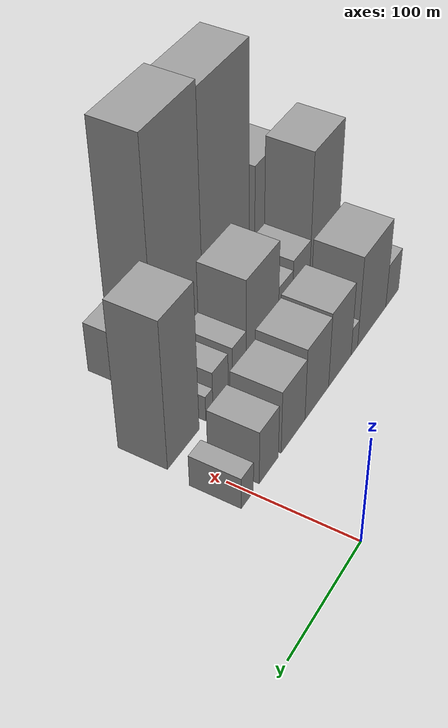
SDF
<sdf version="1.6">
 <world name="default">
  <model name="building_24">
   <static>1</static>
   <pose>100.0000 -220.2358 0 0.000000 0.000000 0.000000</pose>
   <link name="link">
    <pose>0 0 21.00 0 0 0</pose>
    <collision name="collision"><geometry><box><size>40.0000 23.3294 42.0000</size></box></geometry></collision>
    <visual name="visual">
     <cast_shadows>0</cast_shadows>
     <geometry><box><size>40.0000 23.3294 42.0000</size></box></geometry>
     <material>
      <script>
       <uri>model://grey_wall/materials/scripts</uri>
       <uri>model://grey_wall/materials/textures</uri>
       <name>vrc/grey_wall</name>
      </script>
     </material>
    </visual>
   </link>
  </model>
  <model name="building_25">
   <static>1</static>
   <pose>100.0000 -183.9872 0 0.000000 0.000000 0.000000</pose>
   <link name="link">
    <pose>0 0 43.50 0 0 0</pose>
    <collision name="collision"><geometry><box><size>40.0000 49.1678 87.0000</size></box></geometry></collision>
    <visual name="visual">
     <cast_shadows>0</cast_shadows>
     <geometry><box><size>40.0000 49.1678 87.0000</size></box></geometry>
     <material>
      <script>
       <uri>model://grey_wall/materials/scripts</uri>
       <uri>model://grey_wall/materials/textures</uri>
       <name>vrc/grey_wall</name>
      </script>
     </material>
    </visual>
   </link>
  </model>
  <model name="building_26">
   <static>1</static>
   <pose>100.0000 -153.9089 0 0.000000 0.000000 0.000000</pose>
   <link name="link">
    <pose>0 0 13.50 0 0 0</pose>
    <collision name="collision"><geometry><box><size>40.0000 10.9887 27.0000</size></box></geometry></collision>
    <visual name="visual">
     <cast_shadows>0</cast_shadows>
     <geometry><box><size>40.0000 10.9887 27.0000</size></box></geometry>
     <material>
      <script>
       <uri>model://grey_wall/materials/scripts</uri>
       <uri>model://grey_wall/materials/textures</uri>
       <name>vrc/grey_wall</name>
      </script>
     </material>
    </visual>
   </link>
  </model>
  <model name="building_27">
   <static>1</static>
   <pose>100.0000 -130.0910 0 0.000000 0.000000 0.000000</pose>
   <link name="link">
    <pose>0 0 36.00 0 0 0</pose>
    <collision name="collision"><geometry><box><size>40.0000 36.6471 72.0000</size></box></geometry></collision>
    <visual name="visual">
     <cast_shadows>0</cast_shadows>
     <geometry><box><size>40.0000 36.6471 72.0000</size></box></geometry>
     <material>
      <script>
       <uri>model://grey_wall/materials/scripts</uri>
       <uri>model://grey_wall/materials/textures</uri>
       <name>vrc/grey_wall</name>
      </script>
     </material>
    </visual>
   </link>
  </model>
  <model name="building_28">
   <static>1</static>
   <pose>100.0000 -93.4627 0 0.000000 0.000000 0.000000</pose>
   <link name="link">
    <pose>0 0 34.50 0 0 0</pose>
    <collision name="collision"><geometry><box><size>40.0000 36.6096 69.0000</size></box></geometry></collision>
    <visual name="visual">
     <cast_shadows>0</cast_shadows>
     <geometry><box><size>40.0000 36.6096 69.0000</size></box></geometry>
     <material>
      <script>
       <uri>model://grey_wall/materials/scripts</uri>
       <uri>model://grey_wall/materials/textures</uri>
       <name>vrc/grey_wall</name>
      </script>
     </material>
    </visual>
   </link>
  </model>
  <model name="building_29">
   <static>1</static>
   <pose>100.0000 -57.6574 0 0.000000 0.000000 0.000000</pose>
   <link name="link">
    <pose>0 0 30.00 0 0 0</pose>
    <collision name="collision"><geometry><box><size>40.0000 35.0009 60.0000</size></box></geometry></collision>
    <visual name="visual">
     <cast_shadows>0</cast_shadows>
     <geometry><box><size>40.0000 35.0009 60.0000</size></box></geometry>
     <material>
      <script>
       <uri>model://grey_wall/materials/scripts</uri>
       <uri>model://grey_wall/materials/textures</uri>
       <name>vrc/grey_wall</name>
      </script>
     </material>
    </visual>
   </link>
  </model>
  <model name="building_30">
   <static>1</static>
   <pose>100.0000 -22.7668 0 0.000000 0.000000 0.000000</pose>
   <link name="link">
    <pose>0 0 25.50 0 0 0</pose>
    <collision name="collision"><geometry><box><size>40.0000 26.7801 51.0000</size></box></geometry></collision>
    <visual name="visual">
     <cast_shadows>0</cast_shadows>
     <geometry><box><size>40.0000 26.7801 51.0000</size></box></geometry>
     <material>
      <script>
       <uri>model://grey_wall/materials/scripts</uri>
       <uri>model://grey_wall/materials/textures</uri>
       <name>vrc/grey_wall</name>
      </script>
     </material>
    </visual>
   </link>
  </model>
  <model name="building_31">
   <static>1</static>
   <pose>100.0000 6.6735 0 0.000000 0.000000 0.000000</pose>
   <link name="link">
    <pose>0 0 15.00 0 0 0</pose>
    <collision name="collision"><geometry><box><size>40.0000 16.1005 30.0000</size></box></geometry></collision>
    <visual name="visual">
     <cast_shadows>0</cast_shadows>
     <geometry><box><size>40.0000 16.1005 30.0000</size></box></geometry>
     <material>
      <script>
       <uri>model://grey_wall/materials/scripts</uri>
       <uri>model://grey_wall/materials/textures</uri>
       <name>vrc/grey_wall</name>
      </script>
     </material>
    </visual>
   </link>
  </model>
  <model name="building_81">
   <static>1</static>
   <pose>160.0000 -221.2060 0 0.000000 0.000000 0.000000</pose>
   <link name="link">
    <pose>0 0 66.00 0 0 0</pose>
    <collision name="collision"><geometry><box><size>40.0000 48.7094 132.0000</size></box></geometry></collision>
    <visual name="visual">
     <cast_shadows>0</cast_shadows>
     <geometry><box><size>40.0000 48.7094 132.0000</size></box></geometry>
     <material>
      <script>
       <uri>model://grey_wall/materials/scripts</uri>
       <uri>model://grey_wall/materials/textures</uri>
       <name>vrc/grey_wall</name>
      </script>
     </material>
    </visual>
   </link>
  </model>
  <model name="building_82">
   <static>1</static>
   <pose>160.0000 -182.8963 0 0.000000 0.000000 0.000000</pose>
   <link name="link">
    <pose>0 0 25.50 0 0 0</pose>
    <collision name="collision"><geometry><box><size>40.0000 27.9101 51.0000</size></box></geometry></collision>
    <visual name="visual">
     <cast_shadows>0</cast_shadows>
     <geometry><box><size>40.0000 27.9101 51.0000</size></box></geometry>
     <material>
      <script>
       <uri>model://grey_wall/materials/scripts</uri>
       <uri>model://grey_wall/materials/textures</uri>
       <name>vrc/grey_wall</name>
      </script>
     </material>
    </visual>
   </link>
  </model>
  <model name="building_83">
   <static>1</static>
   <pose>160.0000 -157.7309 0 0.000000 0.000000 0.000000</pose>
   <link name="link">
    <pose>0 0 21.00 0 0 0</pose>
    <collision name="collision"><geometry><box><size>40.0000 22.4206 42.0000</size></box></geometry></collision>
    <visual name="visual">
     <cast_shadows>0</cast_shadows>
     <geometry><box><size>40.0000 22.4206 42.0000</size></box></geometry>
     <material>
      <script>
       <uri>model://grey_wall/materials/scripts</uri>
       <uri>model://grey_wall/materials/textures</uri>
       <name>vrc/grey_wall</name>
      </script>
     </material>
    </visual>
   </link>
  </model>
  <model name="building_84">
   <static>1</static>
   <pose>160.0000 -122.2274 0 0.000000 0.000000 0.000000</pose>
   <link name="link">
    <pose>0 0 43.50 0 0 0</pose>
    <collision name="collision"><geometry><box><size>40.0000 48.5863 87.0000</size></box></geometry></collision>
    <visual name="visual">
     <cast_shadows>0</cast_shadows>
     <geometry><box><size>40.0000 48.5863 87.0000</size></box></geometry>
     <material>
      <script>
       <uri>model://grey_wall/materials/scripts</uri>
       <uri>model://grey_wall/materials/textures</uri>
       <name>vrc/grey_wall</name>
      </script>
     </material>
    </visual>
   </link>
  </model>
  <model name="building_85">
   <static>1</static>
   <pose>160.0000 -87.8632 0 0.000000 0.000000 0.000000</pose>
   <link name="link">
    <pose>0 0 19.50 0 0 0</pose>
    <collision name="collision"><geometry><box><size>40.0000 20.1421 39.0000</size></box></geometry></collision>
    <visual name="visual">
     <cast_shadows>0</cast_shadows>
     <geometry><box><size>40.0000 20.1421 39.0000</size></box></geometry>
     <material>
      <script>
       <uri>model://grey_wall/materials/scripts</uri>
       <uri>model://grey_wall/materials/textures</uri>
       <name>vrc/grey_wall</name>
      </script>
     </material>
    </visual>
   </link>
  </model>
  <model name="building_86">
   <static>1</static>
   <pose>160.0000 -60.9558 0 0.000000 0.000000 0.000000</pose>
   <link name="link">
    <pose>0 0 19.50 0 0 0</pose>
    <collision name="collision"><geometry><box><size>40.0000 21.6727 39.0000</size></box></geometry></collision>
    <visual name="visual">
     <cast_shadows>0</cast_shadows>
     <geometry><box><size>40.0000 21.6727 39.0000</size></box></geometry>
     <material>
      <script>
       <uri>model://grey_wall/materials/scripts</uri>
       <uri>model://grey_wall/materials/textures</uri>
       <name>vrc/grey_wall</name>
      </script>
     </material>
    </visual>
   </link>
  </model>
  <model name="building_87">
   <static>1</static>
   <pose>160.0000 -45.2092 0 0.000000 0.000000 0.000000</pose>
   <link name="link">
    <pose>0 0 12.00 0 0 0</pose>
    <collision name="collision"><geometry><box><size>40.0000 9.8205 24.0000</size></box></geometry></collision>
    <visual name="visual">
     <cast_shadows>0</cast_shadows>
     <geometry><box><size>40.0000 9.8205 24.0000</size></box></geometry>
     <material>
      <script>
       <uri>model://grey_wall/materials/scripts</uri>
       <uri>model://grey_wall/materials/textures</uri>
       <name>vrc/grey_wall</name>
      </script>
     </material>
    </visual>
   </link>
  </model>
  <model name="building_88">
   <static>1</static>
   <pose>160.0000 -10.5048 0 0.000000 0.000000 0.000000</pose>
   <link name="link">
    <pose>0 0 69.00 0 0 0</pose>
    <collision name="collision"><geometry><box><size>40.0000 41.5882 138.0000</size></box></geometry></collision>
    <visual name="visual">
     <cast_shadows>0</cast_shadows>
     <geometry><box><size>40.0000 41.5882 138.0000</size></box></geometry>
     <material>
      <script>
       <uri>model://grey_wall/materials/scripts</uri>
       <uri>model://grey_wall/materials/textures</uri>
       <name>vrc/grey_wall</name>
      </script>
     </material>
    </visual>
   </link>
  </model>
  <model name="building_136">
   <static>1</static>
   <pose>220.0000 -241.1494 0 0.000000 0.000000 0.000000</pose>
   <link name="link">
    <pose>0 0 42.00 0 0 0</pose>
    <collision name="collision"><geometry><box><size>40.0000 47.1794 84.0000</size></box></geometry></collision>
    <visual name="visual">
     <cast_shadows>0</cast_shadows>
     <geometry><box><size>40.0000 47.1794 84.0000</size></box></geometry>
     <material>
      <script>
       <uri>model://grey_wall/materials/scripts</uri>
       <uri>model://grey_wall/materials/textures</uri>
       <name>vrc/grey_wall</name>
      </script>
     </material>
    </visual>
   </link>
  </model>
  <model name="building_137">
   <static>1</static>
   <pose>220.0000 -172.5578 0 0.000000 0.000000 0.000000</pose>
   <link name="link">
    <pose>0 0 100.50 0 0 0</pose>
    <collision name="collision"><geometry><box><size>40.0000 72.0038 201.0000</size></box></geometry></collision>
    <visual name="visual">
     <cast_shadows>0</cast_shadows>
     <geometry><box><size>40.0000 72.0038 201.0000</size></box></geometry>
     <material>
      <script>
       <uri>model://grey_wall/materials/scripts</uri>
       <uri>model://grey_wall/materials/textures</uri>
       <name>vrc/grey_wall</name>
      </script>
     </material>
    </visual>
   </link>
  </model>
  <model name="building_138">
   <static>1</static>
   <pose>220.0000 -102.0836 0 0.000000 0.000000 0.000000</pose>
   <link name="link">
    <pose>0 0 103.50 0 0 0</pose>
    <collision name="collision"><geometry><box><size>40.0000 68.9446 207.0000</size></box></geometry></collision>
    <visual name="visual">
     <cast_shadows>0</cast_shadows>
     <geometry><box><size>40.0000 68.9446 207.0000</size></box></geometry>
     <material>
      <script>
       <uri>model://grey_wall/materials/scripts</uri>
       <uri>model://grey_wall/materials/textures</uri>
       <name>vrc/grey_wall</name>
      </script>
     </material>
    </visual>
   </link>
  </model>
  <model name="building_139">
   <static>1</static>
   <pose>220.0000 -54.1604 0 0.000000 0.000000 0.000000</pose>
   <link name="link">
    <pose>0 0 24.00 0 0 0</pose>
    <collision name="collision"><geometry><box><size>40.0000 26.9018 48.0000</size></box></geometry></collision>
    <visual name="visual">
     <cast_shadows>0</cast_shadows>
     <geometry><box><size>40.0000 26.9018 48.0000</size></box></geometry>
     <material>
      <script>
       <uri>model://grey_wall/materials/scripts</uri>
       <uri>model://grey_wall/materials/textures</uri>
       <name>vrc/grey_wall</name>
      </script>
     </material>
    </visual>
   </link>
  </model>
 </world>
</sdf>
